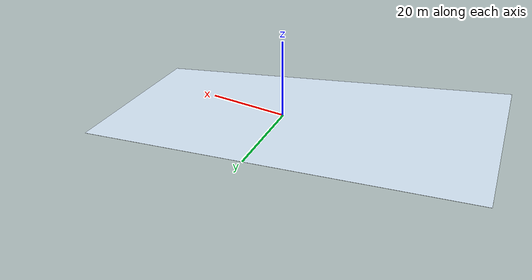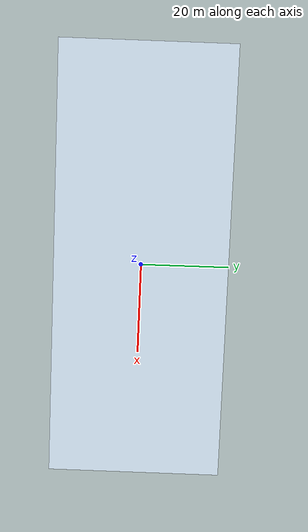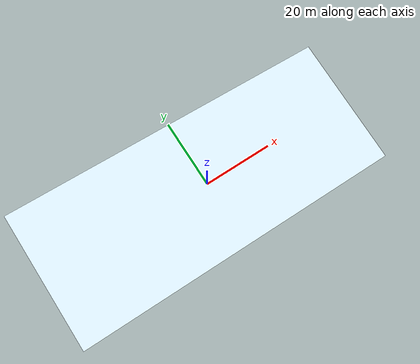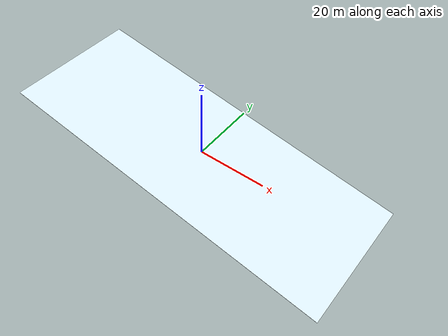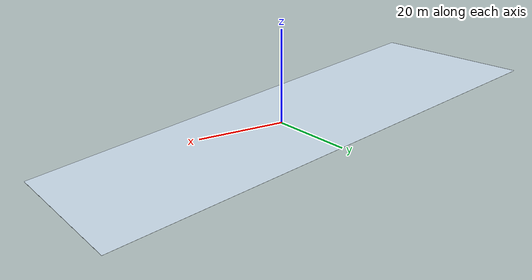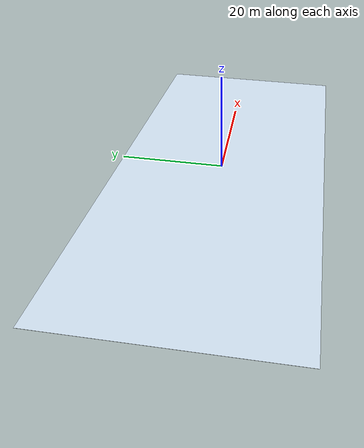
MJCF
<mujoco model="plane_10">
  <compiler angle="radian" autolimits="true" />
  <option timestep="0.00025" gravity="0 0 -9.81" integrator="implicitfast" solver="Newton" cone="elliptic" iterations="80" tolerance="1e-09" />
  <visual>
    <global offwidth="1400" offheight="1000" />
    <headlight ambient=".32 .34 .36" diffuse=".38 .38 .38" specular=".05 .05 .05" />
    <quality shadowsize="2048" />
  </visual>
  <asset>
    <texture name="sky" type="skybox" builtin="gradient" rgb1=".30 .52 .73" rgb2=".86 .92 .97" width="128" height="768" />
    <material name="snow" rgba=".84 .91 .97 1" specular=".18" shininess=".2" />
    <material name="ski_blue" rgba=".02 .25 .46 1" specular=".18" shininess=".2" />
    <material name="ski_orange" rgba="1 .32 .055 1" specular=".18" shininess=".2" />
    <material name="edge" rgba=".25 .32 .37 1" specular=".18" shininess=".2" />
    <material name="binding" rgba=".08 .10 .13 1" specular=".18" shininess=".2" />
    <material name="red" rgba=".95 .09 .12 1" specular=".18" shininess=".2" />
    <material name="blue" rgba=".04 .3 .85 1" specular=".18" shininess=".2" />
  </asset>
  <worldbody>
    <light directional="true" pos="0 0 30" dir=".2 1 -.45" diffuse=".95 .94 .92" />
    <geom name="snow_surface" type="plane" size="50 20 .1" quat="0.9961946981 0 0.08715574275 0" material="snow" contype="1" conaffinity="6" condim="3" friction=".05 .0 .0" solref="0.006 1" solimp="0.9 0.95 0.002" margin="0" gap="0" />
  </worldbody>
</mujoco>
